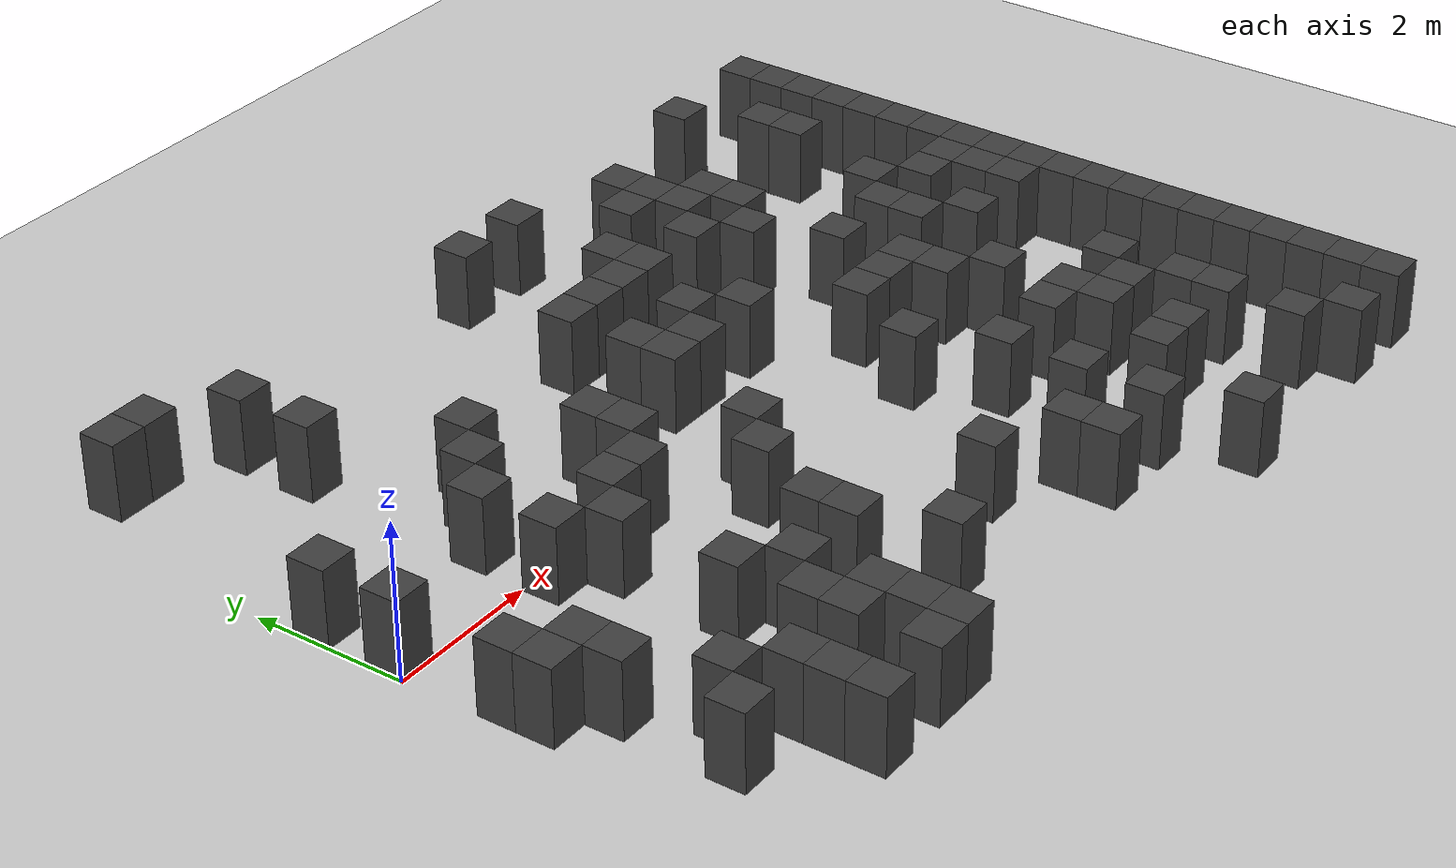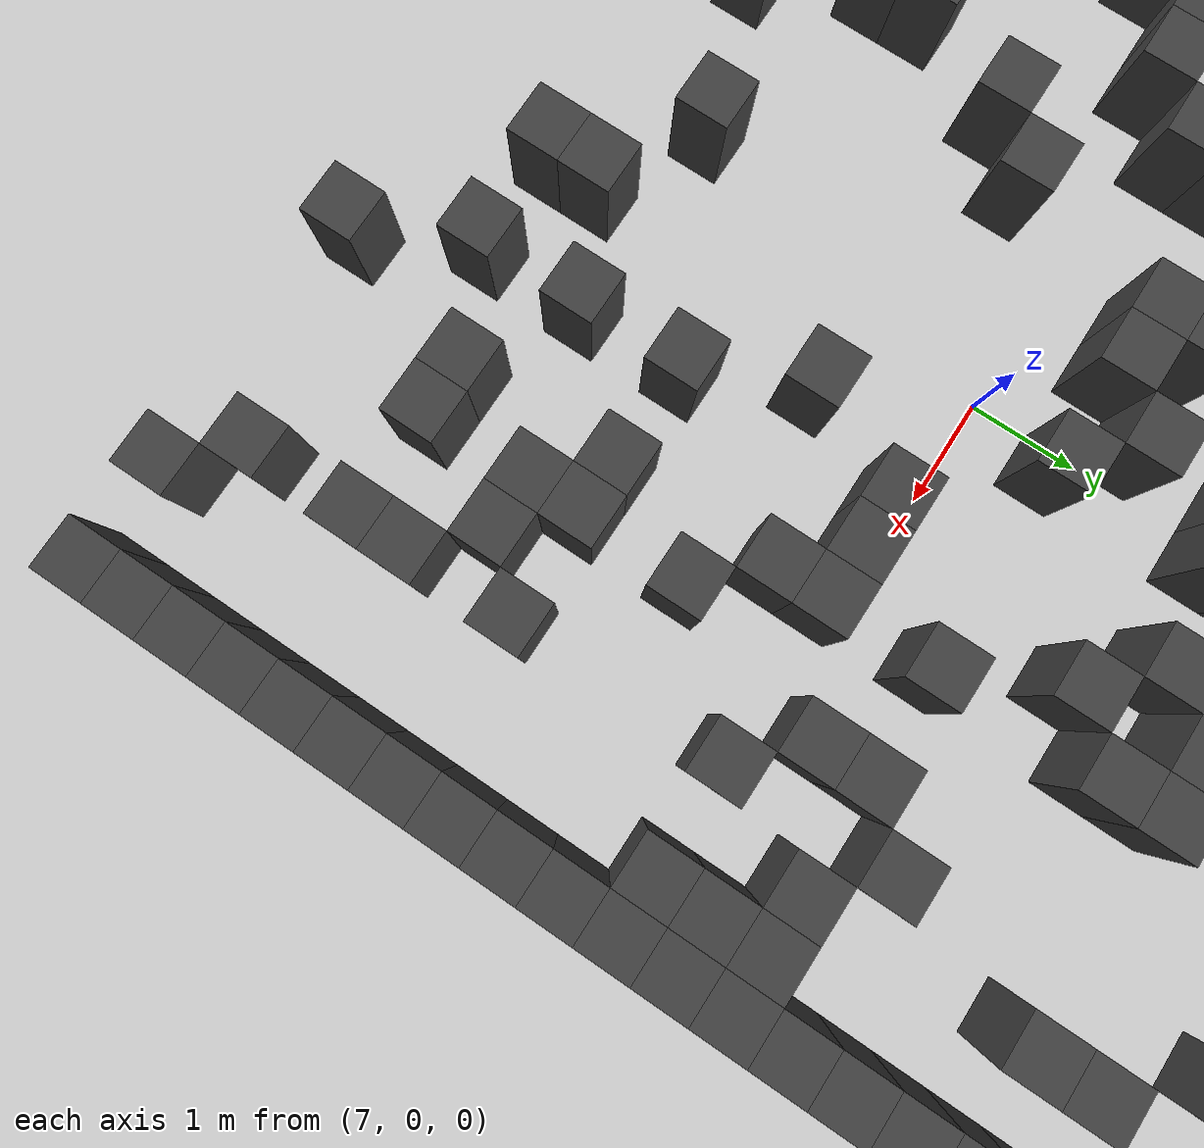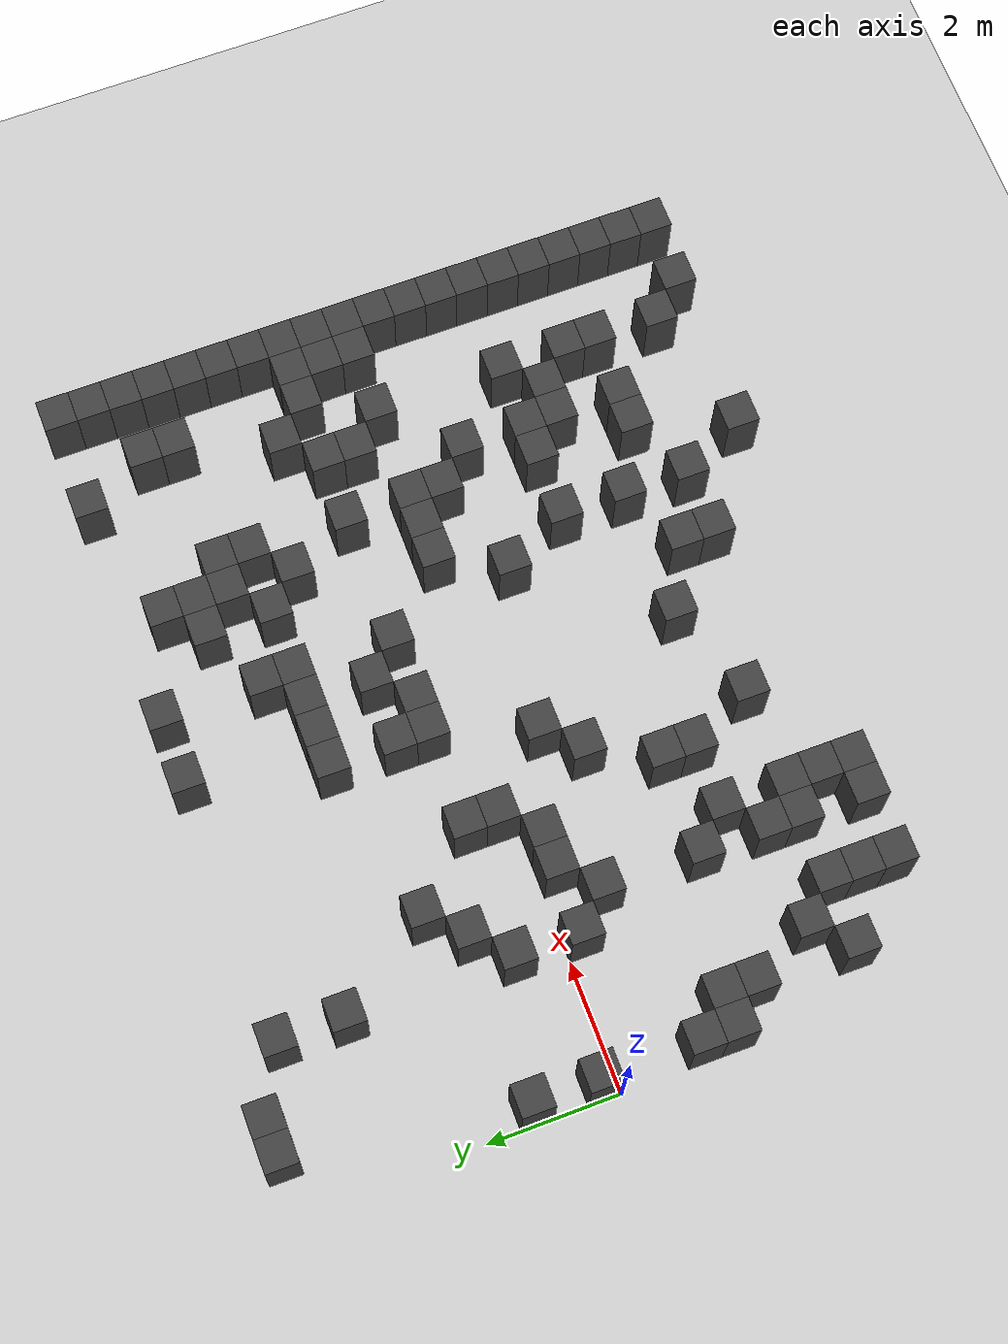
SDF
<sdf version="1.7">
 <world name="map_4302">
  <model name="ground_plane">
   <static>true</static>
   <link name="link">
    <collision name="collision">
     <geometry><plane><normal>0 0 1</normal><size>200 200</size></plane></geometry>
    </collision>
    <visual name="visual">
     <geometry><plane><normal>0 0 1</normal><size>200 200</size></plane></geometry>
     <material><ambient>0.8 0.8 0.8 1</ambient><diffuse>0.8 0.8 0.8 1</diffuse></material>
    </visual>
   </link>
  </model>
  <model name="maze_environment">
   <static>true</static>
   <link name="wall_219">
    <pose>0.750 4.750 0.500 0 0 0</pose>
    <collision name="col"><geometry><box><size>0.5 0.5 1.0</size></box></geometry></collision>
    <visual name="vis">
     <geometry><box><size>0.5 0.5 1.0</size></box></geometry>
     <material><ambient>0.15 0.15 0.15 1</ambient><diffuse>0.25 0.25 0.25 1</diffuse></material>
    </visual>
   </link>
   <link name="wall_220">
    <pose>1.250 4.750 0.500 0 0 0</pose>
    <collision name="col"><geometry><box><size>0.5 0.5 1.0</size></box></geometry></collision>
    <visual name="vis">
     <geometry><box><size>0.5 0.5 1.0</size></box></geometry>
     <material><ambient>0.15 0.15 0.15 1</ambient><diffuse>0.25 0.25 0.25 1</diffuse></material>
    </visual>
   </link>
   <link name="wall_235">
    <pose>2.250 4.250 0.500 0 0 0</pose>
    <collision name="col"><geometry><box><size>0.5 0.5 1.0</size></box></geometry></collision>
    <visual name="vis">
     <geometry><box><size>0.5 0.5 1.0</size></box></geometry>
     <material><ambient>0.15 0.15 0.15 1</ambient><diffuse>0.25 0.25 0.25 1</diffuse></material>
    </visual>
   </link>
   <link name="wall_236">
    <pose>6.250 4.250 0.500 0 0 0</pose>
    <collision name="col"><geometry><box><size>0.5 0.5 1.0</size></box></geometry></collision>
    <visual name="vis">
     <geometry><box><size>0.5 0.5 1.0</size></box></geometry>
     <material><ambient>0.15 0.15 0.15 1</ambient><diffuse>0.25 0.25 0.25 1</diffuse></material>
    </visual>
   </link>
   <link name="wall_237">
    <pose>7.250 4.250 0.500 0 0 0</pose>
    <collision name="col"><geometry><box><size>0.5 0.5 1.0</size></box></geometry></collision>
    <visual name="vis">
     <geometry><box><size>0.5 0.5 1.0</size></box></geometry>
     <material><ambient>0.15 0.15 0.15 1</ambient><diffuse>0.25 0.25 0.25 1</diffuse></material>
    </visual>
   </link>
   <link name="wall_238">
    <pose>10.750 4.250 0.500 0 0 0</pose>
    <collision name="col"><geometry><box><size>0.5 0.5 1.0</size></box></geometry></collision>
    <visual name="vis">
     <geometry><box><size>0.5 0.5 1.0</size></box></geometry>
     <material><ambient>0.15 0.15 0.15 1</ambient><diffuse>0.25 0.25 0.25 1</diffuse></material>
    </visual>
   </link>
   <link name="wall_239">
    <pose>12.250 4.250 0.500 0 0 0</pose>
    <collision name="col"><geometry><box><size>0.5 0.5 1.0</size></box></geometry></collision>
    <visual name="vis">
     <geometry><box><size>0.5 0.5 1.0</size></box></geometry>
     <material><ambient>0.15 0.15 0.15 1</ambient><diffuse>0.25 0.25 0.25 1</diffuse></material>
    </visual>
   </link>
   <link name="wall_242">
    <pose>8.750 3.750 0.500 0 0 0</pose>
    <collision name="col"><geometry><box><size>0.5 0.5 1.0</size></box></geometry></collision>
    <visual name="vis">
     <geometry><box><size>0.5 0.5 1.0</size></box></geometry>
     <material><ambient>0.15 0.15 0.15 1</ambient><diffuse>0.25 0.25 0.25 1</diffuse></material>
    </visual>
   </link>
   <link name="wall_243">
    <pose>12.250 3.750 0.500 0 0 0</pose>
    <collision name="col"><geometry><box><size>0.5 0.5 1.0</size></box></geometry></collision>
    <visual name="vis">
     <geometry><box><size>0.5 0.5 1.0</size></box></geometry>
     <material><ambient>0.15 0.15 0.15 1</ambient><diffuse>0.25 0.25 0.25 1</diffuse></material>
    </visual>
   </link>
   <link name="wall_250">
    <pose>2.250 3.250 0.500 0 0 0</pose>
    <collision name="col"><geometry><box><size>0.5 0.5 1.0</size></box></geometry></collision>
    <visual name="vis">
     <geometry><box><size>0.5 0.5 1.0</size></box></geometry>
     <material><ambient>0.15 0.15 0.15 1</ambient><diffuse>0.25 0.25 0.25 1</diffuse></material>
    </visual>
   </link>
   <link name="wall_251">
    <pose>8.250 3.250 0.500 0 0 0</pose>
    <collision name="col"><geometry><box><size>0.5 0.5 1.0</size></box></geometry></collision>
    <visual name="vis">
     <geometry><box><size>0.5 0.5 1.0</size></box></geometry>
     <material><ambient>0.15 0.15 0.15 1</ambient><diffuse>0.25 0.25 0.25 1</diffuse></material>
    </visual>
   </link>
   <link name="wall_252">
    <pose>8.750 3.250 0.500 0 0 0</pose>
    <collision name="col"><geometry><box><size>0.5 0.5 1.0</size></box></geometry></collision>
    <visual name="vis">
     <geometry><box><size>0.5 0.5 1.0</size></box></geometry>
     <material><ambient>0.15 0.15 0.15 1</ambient><diffuse>0.25 0.25 0.25 1</diffuse></material>
    </visual>
   </link>
   <link name="wall_253">
    <pose>11.250 3.250 0.500 0 0 0</pose>
    <collision name="col"><geometry><box><size>0.5 0.5 1.0</size></box></geometry></collision>
    <visual name="vis">
     <geometry><box><size>0.5 0.5 1.0</size></box></geometry>
     <material><ambient>0.15 0.15 0.15 1</ambient><diffuse>0.25 0.25 0.25 1</diffuse></material>
    </visual>
   </link>
   <link name="wall_254">
    <pose>12.250 3.250 0.500 0 0 0</pose>
    <collision name="col"><geometry><box><size>0.5 0.5 1.0</size></box></geometry></collision>
    <visual name="vis">
     <geometry><box><size>0.5 0.5 1.0</size></box></geometry>
     <material><ambient>0.15 0.15 0.15 1</ambient><diffuse>0.25 0.25 0.25 1</diffuse></material>
    </visual>
   </link>
   <link name="wall_260">
    <pose>7.250 2.750 0.500 0 0 0</pose>
    <collision name="col"><geometry><box><size>0.5 0.5 1.0</size></box></geometry></collision>
    <visual name="vis">
     <geometry><box><size>0.5 0.5 1.0</size></box></geometry>
     <material><ambient>0.15 0.15 0.15 1</ambient><diffuse>0.25 0.25 0.25 1</diffuse></material>
    </visual>
   </link>
   <link name="wall_261">
    <pose>8.750 2.750 0.500 0 0 0</pose>
    <collision name="col"><geometry><box><size>0.5 0.5 1.0</size></box></geometry></collision>
    <visual name="vis">
     <geometry><box><size>0.5 0.5 1.0</size></box></geometry>
     <material><ambient>0.15 0.15 0.15 1</ambient><diffuse>0.25 0.25 0.25 1</diffuse></material>
    </visual>
   </link>
   <link name="wall_262">
    <pose>9.250 2.750 0.500 0 0 0</pose>
    <collision name="col"><geometry><box><size>0.5 0.5 1.0</size></box></geometry></collision>
    <visual name="vis">
     <geometry><box><size>0.5 0.5 1.0</size></box></geometry>
     <material><ambient>0.15 0.15 0.15 1</ambient><diffuse>0.25 0.25 0.25 1</diffuse></material>
    </visual>
   </link>
   <link name="wall_263">
    <pose>11.250 2.750 0.500 0 0 0</pose>
    <collision name="col"><geometry><box><size>0.5 0.5 1.0</size></box></geometry></collision>
    <visual name="vis">
     <geometry><box><size>0.5 0.5 1.0</size></box></geometry>
     <material><ambient>0.15 0.15 0.15 1</ambient><diffuse>0.25 0.25 0.25 1</diffuse></material>
    </visual>
   </link>
   <link name="wall_264">
    <pose>12.250 2.750 0.500 0 0 0</pose>
    <collision name="col"><geometry><box><size>0.5 0.5 1.0</size></box></geometry></collision>
    <visual name="vis">
     <geometry><box><size>0.5 0.5 1.0</size></box></geometry>
     <material><ambient>0.15 0.15 0.15 1</ambient><diffuse>0.25 0.25 0.25 1</diffuse></material>
    </visual>
   </link>
   <link name="wall_273">
    <pose>5.750 2.250 0.500 0 0 0</pose>
    <collision name="col"><geometry><box><size>0.5 0.5 1.0</size></box></geometry></collision>
    <visual name="vis">
     <geometry><box><size>0.5 0.5 1.0</size></box></geometry>
     <material><ambient>0.15 0.15 0.15 1</ambient><diffuse>0.25 0.25 0.25 1</diffuse></material>
    </visual>
   </link>
   <link name="wall_274">
    <pose>6.250 2.250 0.500 0 0 0</pose>
    <collision name="col"><geometry><box><size>0.5 0.5 1.0</size></box></geometry></collision>
    <visual name="vis">
     <geometry><box><size>0.5 0.5 1.0</size></box></geometry>
     <material><ambient>0.15 0.15 0.15 1</ambient><diffuse>0.25 0.25 0.25 1</diffuse></material>
    </visual>
   </link>
   <link name="wall_275">
    <pose>6.750 2.250 0.500 0 0 0</pose>
    <collision name="col"><geometry><box><size>0.5 0.5 1.0</size></box></geometry></collision>
    <visual name="vis">
     <geometry><box><size>0.5 0.5 1.0</size></box></geometry>
     <material><ambient>0.15 0.15 0.15 1</ambient><diffuse>0.25 0.25 0.25 1</diffuse></material>
    </visual>
   </link>
   <link name="wall_276">
    <pose>7.250 2.250 0.500 0 0 0</pose>
    <collision name="col"><geometry><box><size>0.5 0.5 1.0</size></box></geometry></collision>
    <visual name="vis">
     <geometry><box><size>0.5 0.5 1.0</size></box></geometry>
     <material><ambient>0.15 0.15 0.15 1</ambient><diffuse>0.25 0.25 0.25 1</diffuse></material>
    </visual>
   </link>
   <link name="wall_277">
    <pose>8.250 2.250 0.500 0 0 0</pose>
    <collision name="col"><geometry><box><size>0.5 0.5 1.0</size></box></geometry></collision>
    <visual name="vis">
     <geometry><box><size>0.5 0.5 1.0</size></box></geometry>
     <material><ambient>0.15 0.15 0.15 1</ambient><diffuse>0.25 0.25 0.25 1</diffuse></material>
    </visual>
   </link>
   <link name="wall_278">
    <pose>9.250 2.250 0.500 0 0 0</pose>
    <collision name="col"><geometry><box><size>0.5 0.5 1.0</size></box></geometry></collision>
    <visual name="vis">
     <geometry><box><size>0.5 0.5 1.0</size></box></geometry>
     <material><ambient>0.15 0.15 0.15 1</ambient><diffuse>0.25 0.25 0.25 1</diffuse></material>
    </visual>
   </link>
   <link name="wall_279">
    <pose>12.250 2.250 0.500 0 0 0</pose>
    <collision name="col"><geometry><box><size>0.5 0.5 1.0</size></box></geometry></collision>
    <visual name="vis">
     <geometry><box><size>0.5 0.5 1.0</size></box></geometry>
     <material><ambient>0.15 0.15 0.15 1</ambient><diffuse>0.25 0.25 0.25 1</diffuse></material>
    </visual>
   </link>
   <link name="wall_286">
    <pose>3.250 1.750 0.500 0 0 0</pose>
    <collision name="col"><geometry><box><size>0.5 0.5 1.0</size></box></geometry></collision>
    <visual name="vis">
     <geometry><box><size>0.5 0.5 1.0</size></box></geometry>
     <material><ambient>0.15 0.15 0.15 1</ambient><diffuse>0.25 0.25 0.25 1</diffuse></material>
    </visual>
   </link>
   <link name="wall_287">
    <pose>8.750 1.750 0.500 0 0 0</pose>
    <collision name="col"><geometry><box><size>0.5 0.5 1.0</size></box></geometry></collision>
    <visual name="vis">
     <geometry><box><size>0.5 0.5 1.0</size></box></geometry>
     <material><ambient>0.15 0.15 0.15 1</ambient><diffuse>0.25 0.25 0.25 1</diffuse></material>
    </visual>
   </link>
   <link name="wall_288">
    <pose>12.250 1.750 0.500 0 0 0</pose>
    <collision name="col"><geometry><box><size>0.5 0.5 1.0</size></box></geometry></collision>
    <visual name="vis">
     <geometry><box><size>0.5 0.5 1.0</size></box></geometry>
     <material><ambient>0.15 0.15 0.15 1</ambient><diffuse>0.25 0.25 0.25 1</diffuse></material>
    </visual>
   </link>
   <link name="wall_292">
    <pose>0.250 1.250 0.500 0 0 0</pose>
    <collision name="col"><geometry><box><size>0.5 0.5 1.0</size></box></geometry></collision>
    <visual name="vis">
     <geometry><box><size>0.5 0.5 1.0</size></box></geometry>
     <material><ambient>0.15 0.15 0.15 1</ambient><diffuse>0.25 0.25 0.25 1</diffuse></material>
    </visual>
   </link>
   <link name="wall_293">
    <pose>2.750 1.250 0.500 0 0 0</pose>
    <collision name="col"><geometry><box><size>0.5 0.5 1.0</size></box></geometry></collision>
    <visual name="vis">
     <geometry><box><size>0.5 0.5 1.0</size></box></geometry>
     <material><ambient>0.15 0.15 0.15 1</ambient><diffuse>0.25 0.25 0.25 1</diffuse></material>
    </visual>
   </link>
   <link name="wall_294">
    <pose>5.750 1.250 0.500 0 0 0</pose>
    <collision name="col"><geometry><box><size>0.5 0.5 1.0</size></box></geometry></collision>
    <visual name="vis">
     <geometry><box><size>0.5 0.5 1.0</size></box></geometry>
     <material><ambient>0.15 0.15 0.15 1</ambient><diffuse>0.25 0.25 0.25 1</diffuse></material>
    </visual>
   </link>
   <link name="wall_295">
    <pose>6.750 1.250 0.500 0 0 0</pose>
    <collision name="col"><geometry><box><size>0.5 0.5 1.0</size></box></geometry></collision>
    <visual name="vis">
     <geometry><box><size>0.5 0.5 1.0</size></box></geometry>
     <material><ambient>0.15 0.15 0.15 1</ambient><diffuse>0.25 0.25 0.25 1</diffuse></material>
    </visual>
   </link>
   <link name="wall_296">
    <pose>10.750 1.250 0.500 0 0 0</pose>
    <collision name="col"><geometry><box><size>0.5 0.5 1.0</size></box></geometry></collision>
    <visual name="vis">
     <geometry><box><size>0.5 0.5 1.0</size></box></geometry>
     <material><ambient>0.15 0.15 0.15 1</ambient><diffuse>0.25 0.25 0.25 1</diffuse></material>
    </visual>
   </link>
   <link name="wall_297">
    <pose>12.250 1.250 0.500 0 0 0</pose>
    <collision name="col"><geometry><box><size>0.5 0.5 1.0</size></box></geometry></collision>
    <visual name="vis">
     <geometry><box><size>0.5 0.5 1.0</size></box></geometry>
     <material><ambient>0.15 0.15 0.15 1</ambient><diffuse>0.25 0.25 0.25 1</diffuse></material>
    </visual>
   </link>
   <link name="wall_307">
    <pose>2.250 0.750 0.500 0 0 0</pose>
    <collision name="col"><geometry><box><size>0.5 0.5 1.0</size></box></geometry></collision>
    <visual name="vis">
     <geometry><box><size>0.5 0.5 1.0</size></box></geometry>
     <material><ambient>0.15 0.15 0.15 1</ambient><diffuse>0.25 0.25 0.25 1</diffuse></material>
    </visual>
   </link>
   <link name="wall_308">
    <pose>4.250 0.750 0.500 0 0 0</pose>
    <collision name="col"><geometry><box><size>0.5 0.5 1.0</size></box></geometry></collision>
    <visual name="vis">
     <geometry><box><size>0.5 0.5 1.0</size></box></geometry>
     <material><ambient>0.15 0.15 0.15 1</ambient><diffuse>0.25 0.25 0.25 1</diffuse></material>
    </visual>
   </link>
   <link name="wall_309">
    <pose>5.750 0.750 0.500 0 0 0</pose>
    <collision name="col"><geometry><box><size>0.5 0.5 1.0</size></box></geometry></collision>
    <visual name="vis">
     <geometry><box><size>0.5 0.5 1.0</size></box></geometry>
     <material><ambient>0.15 0.15 0.15 1</ambient><diffuse>0.25 0.25 0.25 1</diffuse></material>
    </visual>
   </link>
   <link name="wall_310">
    <pose>6.250 0.750 0.500 0 0 0</pose>
    <collision name="col"><geometry><box><size>0.5 0.5 1.0</size></box></geometry></collision>
    <visual name="vis">
     <geometry><box><size>0.5 0.5 1.0</size></box></geometry>
     <material><ambient>0.15 0.15 0.15 1</ambient><diffuse>0.25 0.25 0.25 1</diffuse></material>
    </visual>
   </link>
   <link name="wall_311">
    <pose>7.250 0.750 0.500 0 0 0</pose>
    <collision name="col"><geometry><box><size>0.5 0.5 1.0</size></box></geometry></collision>
    <visual name="vis">
     <geometry><box><size>0.5 0.5 1.0</size></box></geometry>
     <material><ambient>0.15 0.15 0.15 1</ambient><diffuse>0.25 0.25 0.25 1</diffuse></material>
    </visual>
   </link>
   <link name="wall_312">
    <pose>9.250 0.750 0.500 0 0 0</pose>
    <collision name="col"><geometry><box><size>0.5 0.5 1.0</size></box></geometry></collision>
    <visual name="vis">
     <geometry><box><size>0.5 0.5 1.0</size></box></geometry>
     <material><ambient>0.15 0.15 0.15 1</ambient><diffuse>0.25 0.25 0.25 1</diffuse></material>
    </visual>
   </link>
   <link name="wall_313">
    <pose>10.250 0.750 0.500 0 0 0</pose>
    <collision name="col"><geometry><box><size>0.5 0.5 1.0</size></box></geometry></collision>
    <visual name="vis">
     <geometry><box><size>0.5 0.5 1.0</size></box></geometry>
     <material><ambient>0.15 0.15 0.15 1</ambient><diffuse>0.25 0.25 0.25 1</diffuse></material>
    </visual>
   </link>
   <link name="wall_314">
    <pose>11.250 0.750 0.500 0 0 0</pose>
    <collision name="col"><geometry><box><size>0.5 0.5 1.0</size></box></geometry></collision>
    <visual name="vis">
     <geometry><box><size>0.5 0.5 1.0</size></box></geometry>
     <material><ambient>0.15 0.15 0.15 1</ambient><diffuse>0.25 0.25 0.25 1</diffuse></material>
    </visual>
   </link>
   <link name="wall_315">
    <pose>11.750 0.750 0.500 0 0 0</pose>
    <collision name="col"><geometry><box><size>0.5 0.5 1.0</size></box></geometry></collision>
    <visual name="vis">
     <geometry><box><size>0.5 0.5 1.0</size></box></geometry>
     <material><ambient>0.15 0.15 0.15 1</ambient><diffuse>0.25 0.25 0.25 1</diffuse></material>
    </visual>
   </link>
   <link name="wall_316">
    <pose>12.250 0.750 0.500 0 0 0</pose>
    <collision name="col"><geometry><box><size>0.5 0.5 1.0</size></box></geometry></collision>
    <visual name="vis">
     <geometry><box><size>0.5 0.5 1.0</size></box></geometry>
     <material><ambient>0.15 0.15 0.15 1</ambient><diffuse>0.25 0.25 0.25 1</diffuse></material>
    </visual>
   </link>
   <link name="wall_323">
    <pose>0.250 0.250 0.500 0 0 0</pose>
    <collision name="col"><geometry><box><size>0.5 0.5 1.0</size></box></geometry></collision>
    <visual name="vis">
     <geometry><box><size>0.5 0.5 1.0</size></box></geometry>
     <material><ambient>0.15 0.15 0.15 1</ambient><diffuse>0.25 0.25 0.25 1</diffuse></material>
    </visual>
   </link>
   <link name="wall_324">
    <pose>4.250 0.250 0.500 0 0 0</pose>
    <collision name="col"><geometry><box><size>0.5 0.5 1.0</size></box></geometry></collision>
    <visual name="vis">
     <geometry><box><size>0.5 0.5 1.0</size></box></geometry>
     <material><ambient>0.15 0.15 0.15 1</ambient><diffuse>0.25 0.25 0.25 1</diffuse></material>
    </visual>
   </link>
   <link name="wall_325">
    <pose>10.250 0.250 0.500 0 0 0</pose>
    <collision name="col"><geometry><box><size>0.5 0.5 1.0</size></box></geometry></collision>
    <visual name="vis">
     <geometry><box><size>0.5 0.5 1.0</size></box></geometry>
     <material><ambient>0.15 0.15 0.15 1</ambient><diffuse>0.25 0.25 0.25 1</diffuse></material>
    </visual>
   </link>
   <link name="wall_326">
    <pose>11.750 0.250 0.500 0 0 0</pose>
    <collision name="col"><geometry><box><size>0.5 0.5 1.0</size></box></geometry></collision>
    <visual name="vis">
     <geometry><box><size>0.5 0.5 1.0</size></box></geometry>
     <material><ambient>0.15 0.15 0.15 1</ambient><diffuse>0.25 0.25 0.25 1</diffuse></material>
    </visual>
   </link>
   <link name="wall_327">
    <pose>12.250 0.250 0.500 0 0 0</pose>
    <collision name="col"><geometry><box><size>0.5 0.5 1.0</size></box></geometry></collision>
    <visual name="vis">
     <geometry><box><size>0.5 0.5 1.0</size></box></geometry>
     <material><ambient>0.15 0.15 0.15 1</ambient><diffuse>0.25 0.25 0.25 1</diffuse></material>
    </visual>
   </link>
   <link name="wall_334">
    <pose>2.250 -0.250 0.500 0 0 0</pose>
    <collision name="col"><geometry><box><size>0.5 0.5 1.0</size></box></geometry></collision>
    <visual name="vis">
     <geometry><box><size>0.5 0.5 1.0</size></box></geometry>
     <material><ambient>0.15 0.15 0.15 1</ambient><diffuse>0.25 0.25 0.25 1</diffuse></material>
    </visual>
   </link>
   <link name="wall_335">
    <pose>3.250 -0.250 0.500 0 0 0</pose>
    <collision name="col"><geometry><box><size>0.5 0.5 1.0</size></box></geometry></collision>
    <visual name="vis">
     <geometry><box><size>0.5 0.5 1.0</size></box></geometry>
     <material><ambient>0.15 0.15 0.15 1</ambient><diffuse>0.25 0.25 0.25 1</diffuse></material>
    </visual>
   </link>
   <link name="wall_336">
    <pose>3.750 -0.250 0.500 0 0 0</pose>
    <collision name="col"><geometry><box><size>0.5 0.5 1.0</size></box></geometry></collision>
    <visual name="vis">
     <geometry><box><size>0.5 0.5 1.0</size></box></geometry>
     <material><ambient>0.15 0.15 0.15 1</ambient><diffuse>0.25 0.25 0.25 1</diffuse></material>
    </visual>
   </link>
   <link name="wall_337">
    <pose>8.250 -0.250 0.500 0 0 0</pose>
    <collision name="col"><geometry><box><size>0.5 0.5 1.0</size></box></geometry></collision>
    <visual name="vis">
     <geometry><box><size>0.5 0.5 1.0</size></box></geometry>
     <material><ambient>0.15 0.15 0.15 1</ambient><diffuse>0.25 0.25 0.25 1</diffuse></material>
    </visual>
   </link>
   <link name="wall_338">
    <pose>8.750 -0.250 0.500 0 0 0</pose>
    <collision name="col"><geometry><box><size>0.5 0.5 1.0</size></box></geometry></collision>
    <visual name="vis">
     <geometry><box><size>0.5 0.5 1.0</size></box></geometry>
     <material><ambient>0.15 0.15 0.15 1</ambient><diffuse>0.25 0.25 0.25 1</diffuse></material>
    </visual>
   </link>
   <link name="wall_339">
    <pose>9.250 -0.250 0.500 0 0 0</pose>
    <collision name="col"><geometry><box><size>0.5 0.5 1.0</size></box></geometry></collision>
    <visual name="vis">
     <geometry><box><size>0.5 0.5 1.0</size></box></geometry>
     <material><ambient>0.15 0.15 0.15 1</ambient><diffuse>0.25 0.25 0.25 1</diffuse></material>
    </visual>
   </link>
   <link name="wall_340">
    <pose>10.750 -0.250 0.500 0 0 0</pose>
    <collision name="col"><geometry><box><size>0.5 0.5 1.0</size></box></geometry></collision>
    <visual name="vis">
     <geometry><box><size>0.5 0.5 1.0</size></box></geometry>
     <material><ambient>0.15 0.15 0.15 1</ambient><diffuse>0.25 0.25 0.25 1</diffuse></material>
    </visual>
   </link>
   <link name="wall_341">
    <pose>11.750 -0.250 0.500 0 0 0</pose>
    <collision name="col"><geometry><box><size>0.5 0.5 1.0</size></box></geometry></collision>
    <visual name="vis">
     <geometry><box><size>0.5 0.5 1.0</size></box></geometry>
     <material><ambient>0.15 0.15 0.15 1</ambient><diffuse>0.25 0.25 0.25 1</diffuse></material>
    </visual>
   </link>
   <link name="wall_342">
    <pose>12.250 -0.250 0.500 0 0 0</pose>
    <collision name="col"><geometry><box><size>0.5 0.5 1.0</size></box></geometry></collision>
    <visual name="vis">
     <geometry><box><size>0.5 0.5 1.0</size></box></geometry>
     <material><ambient>0.15 0.15 0.15 1</ambient><diffuse>0.25 0.25 0.25 1</diffuse></material>
    </visual>
   </link>
   <link name="wall_352">
    <pose>2.750 -0.750 0.500 0 0 0</pose>
    <collision name="col"><geometry><box><size>0.5 0.5 1.0</size></box></geometry></collision>
    <visual name="vis">
     <geometry><box><size>0.5 0.5 1.0</size></box></geometry>
     <material><ambient>0.15 0.15 0.15 1</ambient><diffuse>0.25 0.25 0.25 1</diffuse></material>
    </visual>
   </link>
   <link name="wall_353">
    <pose>5.250 -0.750 0.500 0 0 0</pose>
    <collision name="col"><geometry><box><size>0.5 0.5 1.0</size></box></geometry></collision>
    <visual name="vis">
     <geometry><box><size>0.5 0.5 1.0</size></box></geometry>
     <material><ambient>0.15 0.15 0.15 1</ambient><diffuse>0.25 0.25 0.25 1</diffuse></material>
    </visual>
   </link>
   <link name="wall_354">
    <pose>9.250 -0.750 0.500 0 0 0</pose>
    <collision name="col"><geometry><box><size>0.5 0.5 1.0</size></box></geometry></collision>
    <visual name="vis">
     <geometry><box><size>0.5 0.5 1.0</size></box></geometry>
     <material><ambient>0.15 0.15 0.15 1</ambient><diffuse>0.25 0.25 0.25 1</diffuse></material>
    </visual>
   </link>
   <link name="wall_355">
    <pose>12.250 -0.750 0.500 0 0 0</pose>
    <collision name="col"><geometry><box><size>0.5 0.5 1.0</size></box></geometry></collision>
    <visual name="vis">
     <geometry><box><size>0.5 0.5 1.0</size></box></geometry>
     <material><ambient>0.15 0.15 0.15 1</ambient><diffuse>0.25 0.25 0.25 1</diffuse></material>
    </visual>
   </link>
   <link name="wall_361">
    <pose>0.250 -1.250 0.500 0 0 0</pose>
    <collision name="col"><geometry><box><size>0.5 0.5 1.0</size></box></geometry></collision>
    <visual name="vis">
     <geometry><box><size>0.5 0.5 1.0</size></box></geometry>
     <material><ambient>0.15 0.15 0.15 1</ambient><diffuse>0.25 0.25 0.25 1</diffuse></material>
    </visual>
   </link>
   <link name="wall_362">
    <pose>4.750 -1.250 0.500 0 0 0</pose>
    <collision name="col"><geometry><box><size>0.5 0.5 1.0</size></box></geometry></collision>
    <visual name="vis">
     <geometry><box><size>0.5 0.5 1.0</size></box></geometry>
     <material><ambient>0.15 0.15 0.15 1</ambient><diffuse>0.25 0.25 0.25 1</diffuse></material>
    </visual>
   </link>
   <link name="wall_363">
    <pose>7.750 -1.250 0.500 0 0 0</pose>
    <collision name="col"><geometry><box><size>0.5 0.5 1.0</size></box></geometry></collision>
    <visual name="vis">
     <geometry><box><size>0.5 0.5 1.0</size></box></geometry>
     <material><ambient>0.15 0.15 0.15 1</ambient><diffuse>0.25 0.25 0.25 1</diffuse></material>
    </visual>
   </link>
   <link name="wall_364">
    <pose>9.750 -1.250 0.500 0 0 0</pose>
    <collision name="col"><geometry><box><size>0.5 0.5 1.0</size></box></geometry></collision>
    <visual name="vis">
     <geometry><box><size>0.5 0.5 1.0</size></box></geometry>
     <material><ambient>0.15 0.15 0.15 1</ambient><diffuse>0.25 0.25 0.25 1</diffuse></material>
    </visual>
   </link>
   <link name="wall_365">
    <pose>12.250 -1.250 0.500 0 0 0</pose>
    <collision name="col"><geometry><box><size>0.5 0.5 1.0</size></box></geometry></collision>
    <visual name="vis">
     <geometry><box><size>0.5 0.5 1.0</size></box></geometry>
     <material><ambient>0.15 0.15 0.15 1</ambient><diffuse>0.25 0.25 0.25 1</diffuse></material>
    </visual>
   </link>
   <link name="wall_372">
    <pose>0.250 -1.750 0.500 0 0 0</pose>
    <collision name="col"><geometry><box><size>0.5 0.5 1.0</size></box></geometry></collision>
    <visual name="vis">
     <geometry><box><size>0.5 0.5 1.0</size></box></geometry>
     <material><ambient>0.15 0.15 0.15 1</ambient><diffuse>0.25 0.25 0.25 1</diffuse></material>
    </visual>
   </link>
   <link name="wall_373">
    <pose>0.750 -1.750 0.500 0 0 0</pose>
    <collision name="col"><geometry><box><size>0.5 0.5 1.0</size></box></geometry></collision>
    <visual name="vis">
     <geometry><box><size>0.5 0.5 1.0</size></box></geometry>
     <material><ambient>0.15 0.15 0.15 1</ambient><diffuse>0.25 0.25 0.25 1</diffuse></material>
    </visual>
   </link>
   <link name="wall_374">
    <pose>12.250 -1.750 0.500 0 0 0</pose>
    <collision name="col"><geometry><box><size>0.5 0.5 1.0</size></box></geometry></collision>
    <visual name="vis">
     <geometry><box><size>0.5 0.5 1.0</size></box></geometry>
     <material><ambient>0.15 0.15 0.15 1</ambient><diffuse>0.25 0.25 0.25 1</diffuse></material>
    </visual>
   </link>
   <link name="wall_379">
    <pose>0.750 -2.250 0.500 0 0 0</pose>
    <collision name="col"><geometry><box><size>0.5 0.5 1.0</size></box></geometry></collision>
    <visual name="vis">
     <geometry><box><size>0.5 0.5 1.0</size></box></geometry>
     <material><ambient>0.15 0.15 0.15 1</ambient><diffuse>0.25 0.25 0.25 1</diffuse></material>
    </visual>
   </link>
   <link name="wall_380">
    <pose>2.750 -2.250 0.500 0 0 0</pose>
    <collision name="col"><geometry><box><size>0.5 0.5 1.0</size></box></geometry></collision>
    <visual name="vis">
     <geometry><box><size>0.5 0.5 1.0</size></box></geometry>
     <material><ambient>0.15 0.15 0.15 1</ambient><diffuse>0.25 0.25 0.25 1</diffuse></material>
    </visual>
   </link>
   <link name="wall_381">
    <pose>4.250 -2.250 0.500 0 0 0</pose>
    <collision name="col"><geometry><box><size>0.5 0.5 1.0</size></box></geometry></collision>
    <visual name="vis">
     <geometry><box><size>0.5 0.5 1.0</size></box></geometry>
     <material><ambient>0.15 0.15 0.15 1</ambient><diffuse>0.25 0.25 0.25 1</diffuse></material>
    </visual>
   </link>
   <link name="wall_382">
    <pose>8.250 -2.250 0.500 0 0 0</pose>
    <collision name="col"><geometry><box><size>0.5 0.5 1.0</size></box></geometry></collision>
    <visual name="vis">
     <geometry><box><size>0.5 0.5 1.0</size></box></geometry>
     <material><ambient>0.15 0.15 0.15 1</ambient><diffuse>0.25 0.25 0.25 1</diffuse></material>
    </visual>
   </link>
   <link name="wall_383">
    <pose>9.250 -2.250 0.500 0 0 0</pose>
    <collision name="col"><geometry><box><size>0.5 0.5 1.0</size></box></geometry></collision>
    <visual name="vis">
     <geometry><box><size>0.5 0.5 1.0</size></box></geometry>
     <material><ambient>0.15 0.15 0.15 1</ambient><diffuse>0.25 0.25 0.25 1</diffuse></material>
    </visual>
   </link>
   <link name="wall_384">
    <pose>9.750 -2.250 0.500 0 0 0</pose>
    <collision name="col"><geometry><box><size>0.5 0.5 1.0</size></box></geometry></collision>
    <visual name="vis">
     <geometry><box><size>0.5 0.5 1.0</size></box></geometry>
     <material><ambient>0.15 0.15 0.15 1</ambient><diffuse>0.25 0.25 0.25 1</diffuse></material>
    </visual>
   </link>
   <link name="wall_385">
    <pose>10.750 -2.250 0.500 0 0 0</pose>
    <collision name="col"><geometry><box><size>0.5 0.5 1.0</size></box></geometry></collision>
    <visual name="vis">
     <geometry><box><size>0.5 0.5 1.0</size></box></geometry>
     <material><ambient>0.15 0.15 0.15 1</ambient><diffuse>0.25 0.25 0.25 1</diffuse></material>
    </visual>
   </link>
   <link name="wall_386">
    <pose>12.250 -2.250 0.500 0 0 0</pose>
    <collision name="col"><geometry><box><size>0.5 0.5 1.0</size></box></geometry></collision>
    <visual name="vis">
     <geometry><box><size>0.5 0.5 1.0</size></box></geometry>
     <material><ambient>0.15 0.15 0.15 1</ambient><diffuse>0.25 0.25 0.25 1</diffuse></material>
    </visual>
   </link>
   <link name="wall_393">
    <pose>3.250 -2.750 0.500 0 0 0</pose>
    <collision name="col"><geometry><box><size>0.5 0.5 1.0</size></box></geometry></collision>
    <visual name="vis">
     <geometry><box><size>0.5 0.5 1.0</size></box></geometry>
     <material><ambient>0.15 0.15 0.15 1</ambient><diffuse>0.25 0.25 0.25 1</diffuse></material>
    </visual>
   </link>
   <link name="wall_394">
    <pose>4.250 -2.750 0.500 0 0 0</pose>
    <collision name="col"><geometry><box><size>0.5 0.5 1.0</size></box></geometry></collision>
    <visual name="vis">
     <geometry><box><size>0.5 0.5 1.0</size></box></geometry>
     <material><ambient>0.15 0.15 0.15 1</ambient><diffuse>0.25 0.25 0.25 1</diffuse></material>
    </visual>
   </link>
   <link name="wall_395">
    <pose>9.750 -2.750 0.500 0 0 0</pose>
    <collision name="col"><geometry><box><size>0.5 0.5 1.0</size></box></geometry></collision>
    <visual name="vis">
     <geometry><box><size>0.5 0.5 1.0</size></box></geometry>
     <material><ambient>0.15 0.15 0.15 1</ambient><diffuse>0.25 0.25 0.25 1</diffuse></material>
    </visual>
   </link>
   <link name="wall_396">
    <pose>10.250 -2.750 0.500 0 0 0</pose>
    <collision name="col"><geometry><box><size>0.5 0.5 1.0</size></box></geometry></collision>
    <visual name="vis">
     <geometry><box><size>0.5 0.5 1.0</size></box></geometry>
     <material><ambient>0.15 0.15 0.15 1</ambient><diffuse>0.25 0.25 0.25 1</diffuse></material>
    </visual>
   </link>
   <link name="wall_397">
    <pose>12.250 -2.750 0.500 0 0 0</pose>
    <collision name="col"><geometry><box><size>0.5 0.5 1.0</size></box></geometry></collision>
    <visual name="vis">
     <geometry><box><size>0.5 0.5 1.0</size></box></geometry>
     <material><ambient>0.15 0.15 0.15 1</ambient><diffuse>0.25 0.25 0.25 1</diffuse></material>
    </visual>
   </link>
   <link name="wall_402">
    <pose>1.250 -3.250 0.500 0 0 0</pose>
    <collision name="col"><geometry><box><size>0.5 0.5 1.0</size></box></geometry></collision>
    <visual name="vis">
     <geometry><box><size>0.5 0.5 1.0</size></box></geometry>
     <material><ambient>0.15 0.15 0.15 1</ambient><diffuse>0.25 0.25 0.25 1</diffuse></material>
    </visual>
   </link>
   <link name="wall_403">
    <pose>2.750 -3.250 0.500 0 0 0</pose>
    <collision name="col"><geometry><box><size>0.5 0.5 1.0</size></box></geometry></collision>
    <visual name="vis">
     <geometry><box><size>0.5 0.5 1.0</size></box></geometry>
     <material><ambient>0.15 0.15 0.15 1</ambient><diffuse>0.25 0.25 0.25 1</diffuse></material>
    </visual>
   </link>
   <link name="wall_404">
    <pose>6.250 -3.250 0.500 0 0 0</pose>
    <collision name="col"><geometry><box><size>0.5 0.5 1.0</size></box></geometry></collision>
    <visual name="vis">
     <geometry><box><size>0.5 0.5 1.0</size></box></geometry>
     <material><ambient>0.15 0.15 0.15 1</ambient><diffuse>0.25 0.25 0.25 1</diffuse></material>
    </visual>
   </link>
   <link name="wall_405">
    <pose>8.250 -3.250 0.500 0 0 0</pose>
    <collision name="col"><geometry><box><size>0.5 0.5 1.0</size></box></geometry></collision>
    <visual name="vis">
     <geometry><box><size>0.5 0.5 1.0</size></box></geometry>
     <material><ambient>0.15 0.15 0.15 1</ambient><diffuse>0.25 0.25 0.25 1</diffuse></material>
    </visual>
   </link>
   <link name="wall_406">
    <pose>10.750 -3.250 0.500 0 0 0</pose>
    <collision name="col"><geometry><box><size>0.5 0.5 1.0</size></box></geometry></collision>
    <visual name="vis">
     <geometry><box><size>0.5 0.5 1.0</size></box></geometry>
     <material><ambient>0.15 0.15 0.15 1</ambient><diffuse>0.25 0.25 0.25 1</diffuse></material>
    </visual>
   </link>
   <link name="wall_407">
    <pose>12.250 -3.250 0.500 0 0 0</pose>
    <collision name="col"><geometry><box><size>0.5 0.5 1.0</size></box></geometry></collision>
    <visual name="vis">
     <geometry><box><size>0.5 0.5 1.0</size></box></geometry>
     <material><ambient>0.15 0.15 0.15 1</ambient><diffuse>0.25 0.25 0.25 1</diffuse></material>
    </visual>
   </link>
   <link name="wall_416">
    <pose>0.750 -3.750 0.500 0 0 0</pose>
    <collision name="col"><geometry><box><size>0.5 0.5 1.0</size></box></geometry></collision>
    <visual name="vis">
     <geometry><box><size>0.5 0.5 1.0</size></box></geometry>
     <material><ambient>0.15 0.15 0.15 1</ambient><diffuse>0.25 0.25 0.25 1</diffuse></material>
    </visual>
   </link>
   <link name="wall_417">
    <pose>1.750 -3.750 0.500 0 0 0</pose>
    <collision name="col"><geometry><box><size>0.5 0.5 1.0</size></box></geometry></collision>
    <visual name="vis">
     <geometry><box><size>0.5 0.5 1.0</size></box></geometry>
     <material><ambient>0.15 0.15 0.15 1</ambient><diffuse>0.25 0.25 0.25 1</diffuse></material>
    </visual>
   </link>
   <link name="wall_418">
    <pose>2.750 -3.750 0.500 0 0 0</pose>
    <collision name="col"><geometry><box><size>0.5 0.5 1.0</size></box></geometry></collision>
    <visual name="vis">
     <geometry><box><size>0.5 0.5 1.0</size></box></geometry>
     <material><ambient>0.15 0.15 0.15 1</ambient><diffuse>0.25 0.25 0.25 1</diffuse></material>
    </visual>
   </link>
   <link name="wall_419">
    <pose>3.250 -3.750 0.500 0 0 0</pose>
    <collision name="col"><geometry><box><size>0.5 0.5 1.0</size></box></geometry></collision>
    <visual name="vis">
     <geometry><box><size>0.5 0.5 1.0</size></box></geometry>
     <material><ambient>0.15 0.15 0.15 1</ambient><diffuse>0.25 0.25 0.25 1</diffuse></material>
    </visual>
   </link>
   <link name="wall_420">
    <pose>4.750 -3.750 0.500 0 0 0</pose>
    <collision name="col"><geometry><box><size>0.5 0.5 1.0</size></box></geometry></collision>
    <visual name="vis">
     <geometry><box><size>0.5 0.5 1.0</size></box></geometry>
     <material><ambient>0.15 0.15 0.15 1</ambient><diffuse>0.25 0.25 0.25 1</diffuse></material>
    </visual>
   </link>
   <link name="wall_421">
    <pose>7.250 -3.750 0.500 0 0 0</pose>
    <collision name="col"><geometry><box><size>0.5 0.5 1.0</size></box></geometry></collision>
    <visual name="vis">
     <geometry><box><size>0.5 0.5 1.0</size></box></geometry>
     <material><ambient>0.15 0.15 0.15 1</ambient><diffuse>0.25 0.25 0.25 1</diffuse></material>
    </visual>
   </link>
   <link name="wall_422">
    <pose>9.250 -3.750 0.500 0 0 0</pose>
    <collision name="col"><geometry><box><size>0.5 0.5 1.0</size></box></geometry></collision>
    <visual name="vis">
     <geometry><box><size>0.5 0.5 1.0</size></box></geometry>
     <material><ambient>0.15 0.15 0.15 1</ambient><diffuse>0.25 0.25 0.25 1</diffuse></material>
    </visual>
   </link>
   <link name="wall_423">
    <pose>9.750 -3.750 0.500 0 0 0</pose>
    <collision name="col"><geometry><box><size>0.5 0.5 1.0</size></box></geometry></collision>
    <visual name="vis">
     <geometry><box><size>0.5 0.5 1.0</size></box></geometry>
     <material><ambient>0.15 0.15 0.15 1</ambient><diffuse>0.25 0.25 0.25 1</diffuse></material>
    </visual>
   </link>
   <link name="wall_424">
    <pose>10.750 -3.750 0.500 0 0 0</pose>
    <collision name="col"><geometry><box><size>0.5 0.5 1.0</size></box></geometry></collision>
    <visual name="vis">
     <geometry><box><size>0.5 0.5 1.0</size></box></geometry>
     <material><ambient>0.15 0.15 0.15 1</ambient><diffuse>0.25 0.25 0.25 1</diffuse></material>
    </visual>
   </link>
   <link name="wall_425">
    <pose>12.250 -3.750 0.500 0 0 0</pose>
    <collision name="col"><geometry><box><size>0.5 0.5 1.0</size></box></geometry></collision>
    <visual name="vis">
     <geometry><box><size>0.5 0.5 1.0</size></box></geometry>
     <material><ambient>0.15 0.15 0.15 1</ambient><diffuse>0.25 0.25 0.25 1</diffuse></material>
    </visual>
   </link>
   <link name="wall_434">
    <pose>1.750 -4.250 0.500 0 0 0</pose>
    <collision name="col"><geometry><box><size>0.5 0.5 1.0</size></box></geometry></collision>
    <visual name="vis">
     <geometry><box><size>0.5 0.5 1.0</size></box></geometry>
     <material><ambient>0.15 0.15 0.15 1</ambient><diffuse>0.25 0.25 0.25 1</diffuse></material>
    </visual>
   </link>
   <link name="wall_435">
    <pose>3.250 -4.250 0.500 0 0 0</pose>
    <collision name="col"><geometry><box><size>0.5 0.5 1.0</size></box></geometry></collision>
    <visual name="vis">
     <geometry><box><size>0.5 0.5 1.0</size></box></geometry>
     <material><ambient>0.15 0.15 0.15 1</ambient><diffuse>0.25 0.25 0.25 1</diffuse></material>
    </visual>
   </link>
   <link name="wall_436">
    <pose>7.250 -4.250 0.500 0 0 0</pose>
    <collision name="col"><geometry><box><size>0.5 0.5 1.0</size></box></geometry></collision>
    <visual name="vis">
     <geometry><box><size>0.5 0.5 1.0</size></box></geometry>
     <material><ambient>0.15 0.15 0.15 1</ambient><diffuse>0.25 0.25 0.25 1</diffuse></material>
    </visual>
   </link>
   <link name="wall_437">
    <pose>8.250 -4.250 0.500 0 0 0</pose>
    <collision name="col"><geometry><box><size>0.5 0.5 1.0</size></box></geometry></collision>
    <visual name="vis">
     <geometry><box><size>0.5 0.5 1.0</size></box></geometry>
     <material><ambient>0.15 0.15 0.15 1</ambient><diffuse>0.25 0.25 0.25 1</diffuse></material>
    </visual>
   </link>
   <link name="wall_438">
    <pose>12.250 -4.250 0.500 0 0 0</pose>
    <collision name="col"><geometry><box><size>0.5 0.5 1.0</size></box></geometry></collision>
    <visual name="vis">
     <geometry><box><size>0.5 0.5 1.0</size></box></geometry>
     <material><ambient>0.15 0.15 0.15 1</ambient><diffuse>0.25 0.25 0.25 1</diffuse></material>
    </visual>
   </link>
   <link name="wall_446">
    <pose>1.750 -4.750 0.500 0 0 0</pose>
    <collision name="col"><geometry><box><size>0.5 0.5 1.0</size></box></geometry></collision>
    <visual name="vis">
     <geometry><box><size>0.5 0.5 1.0</size></box></geometry>
     <material><ambient>0.15 0.15 0.15 1</ambient><diffuse>0.25 0.25 0.25 1</diffuse></material>
    </visual>
   </link>
   <link name="wall_447">
    <pose>2.750 -4.750 0.500 0 0 0</pose>
    <collision name="col"><geometry><box><size>0.5 0.5 1.0</size></box></geometry></collision>
    <visual name="vis">
     <geometry><box><size>0.5 0.5 1.0</size></box></geometry>
     <material><ambient>0.15 0.15 0.15 1</ambient><diffuse>0.25 0.25 0.25 1</diffuse></material>
    </visual>
   </link>
   <link name="wall_448">
    <pose>3.250 -4.750 0.500 0 0 0</pose>
    <collision name="col"><geometry><box><size>0.5 0.5 1.0</size></box></geometry></collision>
    <visual name="vis">
     <geometry><box><size>0.5 0.5 1.0</size></box></geometry>
     <material><ambient>0.15 0.15 0.15 1</ambient><diffuse>0.25 0.25 0.25 1</diffuse></material>
    </visual>
   </link>
   <link name="wall_449">
    <pose>10.750 -4.750 0.500 0 0 0</pose>
    <collision name="col"><geometry><box><size>0.5 0.5 1.0</size></box></geometry></collision>
    <visual name="vis">
     <geometry><box><size>0.5 0.5 1.0</size></box></geometry>
     <material><ambient>0.15 0.15 0.15 1</ambient><diffuse>0.25 0.25 0.25 1</diffuse></material>
    </visual>
   </link>
   <link name="wall_450">
    <pose>12.250 -4.750 0.500 0 0 0</pose>
    <collision name="col"><geometry><box><size>0.5 0.5 1.0</size></box></geometry></collision>
    <visual name="vis">
     <geometry><box><size>0.5 0.5 1.0</size></box></geometry>
     <material><ambient>0.15 0.15 0.15 1</ambient><diffuse>0.25 0.25 0.25 1</diffuse></material>
    </visual>
   </link>
   <link name="wall_458">
    <pose>8.750 -5.250 0.500 0 0 0</pose>
    <collision name="col"><geometry><box><size>0.5 0.5 1.0</size></box></geometry></collision>
    <visual name="vis">
     <geometry><box><size>0.5 0.5 1.0</size></box></geometry>
     <material><ambient>0.15 0.15 0.15 1</ambient><diffuse>0.25 0.25 0.25 1</diffuse></material>
    </visual>
   </link>
   <link name="wall_459">
    <pose>11.250 -5.250 0.500 0 0 0</pose>
    <collision name="col"><geometry><box><size>0.5 0.5 1.0</size></box></geometry></collision>
    <visual name="vis">
     <geometry><box><size>0.5 0.5 1.0</size></box></geometry>
     <material><ambient>0.15 0.15 0.15 1</ambient><diffuse>0.25 0.25 0.25 1</diffuse></material>
    </visual>
   </link>
   <link name="wall_460">
    <pose>12.250 -5.250 0.500 0 0 0</pose>
    <collision name="col"><geometry><box><size>0.5 0.5 1.0</size></box></geometry></collision>
    <visual name="vis">
     <geometry><box><size>0.5 0.5 1.0</size></box></geometry>
     <material><ambient>0.15 0.15 0.15 1</ambient><diffuse>0.25 0.25 0.25 1</diffuse></material>
    </visual>
   </link>
  </model>
 </world>
</sdf>
